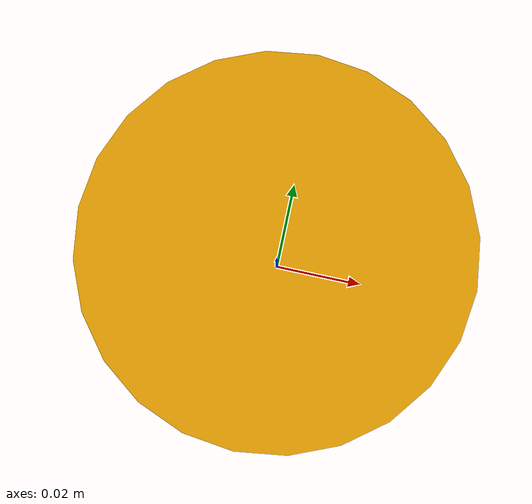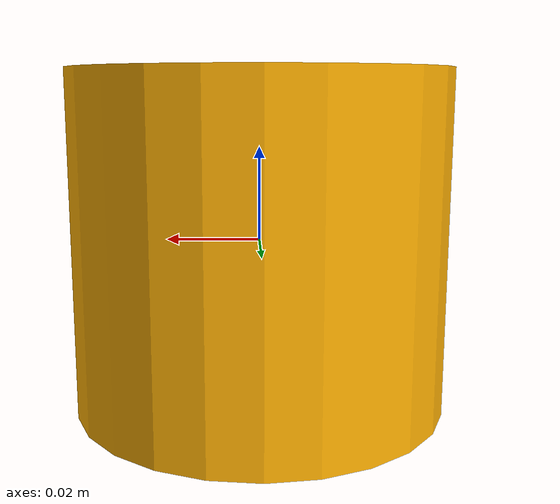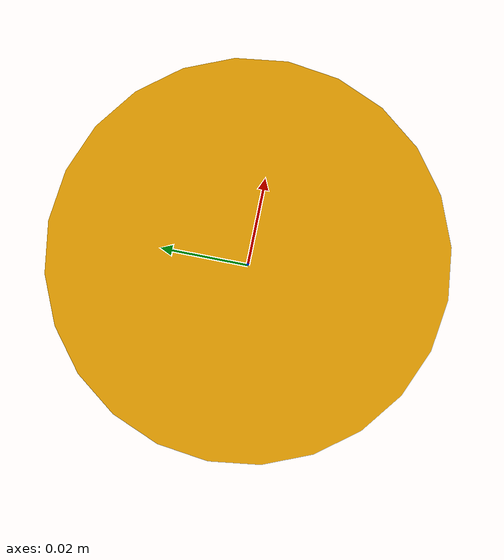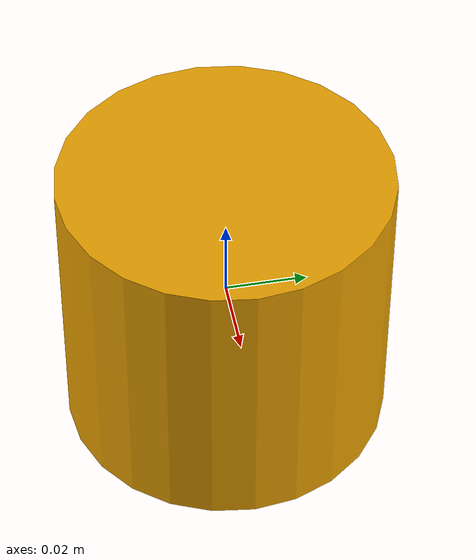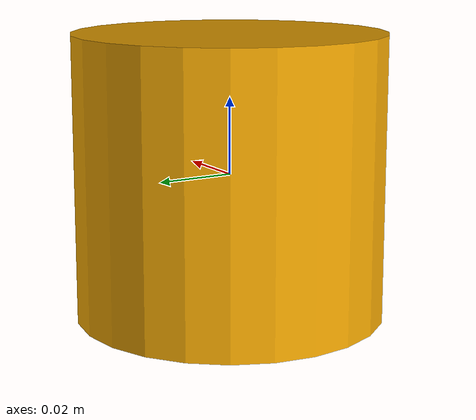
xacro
<?xml version="1.0"?>
<robot xmlns:xacro="http://www.ros.org/wiki/xacro" name="OS1-128">

  <gazebo reference="OS1-128">
    <static>false</static>
  </gazebo>

  <xacro:include filename="$(find hyrecro)/urdf/hyrecro_materials.xacro"/>
  <xacro:include filename="$(find hyrecro)/urdf/sensor/os1_128_MODIF.urdf.xacro"/>
  <xacro:property name="PI"  value="3.1415926535897931"/>

<!--LINKS DECLARATION-->

  <xacro:OS1-128
    parent       = "base_link"
    name         = "os1_sensor"
    topic_points = "/os1/pointCloud"
    topic_imu    = "/os1/imu"
    hz           = "10"
    lasers       = "128"
    samples      = "512"
    min_range    = "0.2"
    max_range    = "10.0"
    noise        = "0.008"
    min_angle    = "-${M_PI}"
    max_angle    = "${M_PI}"
    lidar_link   = "os1_lidar"
    imu_link     = "os1_imu"
    vfov_min     = "-0.3979"
    vfov_max     = "0.3979">
    <origin xyz="0.0 0.0 0.0365" rpy="0.0 0.0 0.0"/>
  </xacro:OS1-128>

</robot>

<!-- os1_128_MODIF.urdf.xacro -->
<robot xmlns:xacro="http://www.ros.org/wiki/xacro" name="OS1-128">
  <xacro:property name="M_PI" value="3.1415926535897931" />
  <xacro:macro name="OS1-128" params="*origin parent:=base_link name:=os1_sensor topic_points:=/os1_cloud_node/points topic_imu:=/os1_cloud_node/imu hz:=10 lasers:=128 samples:=512 min_range:=0.8 max_range:=120.0 noise:=0.008 min_angle:=-${M_PI} max_angle:=${M_PI} lidar_link:=os1_lidar imu_link:=os1_imu vfov_min:=-0.3979 vfov_max:=0.3979">

    <link name="${name}">
      <inertial>
         <mass value="0.33"/>
         <origin xyz="0 0 0" rpy="0 0 0" />
         <inertia ixx="0.000241148" ixy="0" ixz="0"
          iyy="0.000241148" iyz="0" izz="0.000264"/>
      </inertial>
      <collision name="base_collision">
         <origin xyz="0 0 0" rpy="0 0 0" />
         <geometry>
 	        <cylinder radius="0.04" length="0.073"/>
         </geometry>
      </collision>
      <visual name="base_visual">
         <origin xyz="0 0 0.0" rpy="0 0 1.5707" />
         <geometry>
          <cylinder length="0.073" radius="0.04" />
         </geometry>
      </visual>
    </link>

    <link name="${imu_link}" />

    <link name="${lidar_link}" />

    <joint name="${name}_imu_link_joint" type="fixed">
      <parent link="${name}" />
      <child link="${imu_link}" />
      <origin xyz="0.006253 -0.011775 0.007645" rpy="0 0 0" />
    </joint>
    <gazebo reference="${imu_link}">
    </gazebo>

    <joint name="${name}_lidar_link_joint" type="fixed">
      <parent link="${name}" />
      <child link="${lidar_link}" />
      <origin xyz="0.0 0.0 0.0365" rpy="0 0 0" />
    </joint>

    <!-- Gazebo requires the ouster_gazebo_plugins package -->
    <gazebo reference="${name}">
        <sensor type="gpu_ray" name="${name}-OS1-128">
          <pose>0 0 0 0 0 0</pose>
          <visualize>false</visualize>
          <update_rate>${hz}</update_rate>
          <ray>
            <scan>
              <horizontal>
                <samples>${samples}</samples>
                <resolution>1</resolution>
                <min_angle>${min_angle}</min_angle>
                <max_angle>${max_angle}</max_angle>
              </horizontal>
              <vertical>
                <samples>${lasers}</samples>
                <resolution>1</resolution>
                <min_angle>${vfov_min}</min_angle>
                <max_angle>${vfov_max}</max_angle>
              </vertical>
            </scan>
            <range>
              <min>${min_range}</min>
              <max>${max_range}</max>
              <resolution>0.03</resolution>
            </range>
          </ray>
          <plugin name="gazebo_ros_laser_controller" filename="libgazebo_ros_ouster_gpu_laser.so">
            <topicName>${topic_points}</topicName>
            <frameName>${name}</frameName>
            <min_range>${min_range}</min_range>
            <max_range>${max_range}</max_range>
            <gaussianNoise>${noise}</gaussianNoise>
          </plugin>
        </sensor>
    </gazebo>

    <!-- IMU -->
  <gazebo>
    <plugin name="imu_controller" filename="libhector_gazebo_ros_imu.so">
      <robotNamespace>/</robotNamespace>
      <updateRate>100.0</updateRate>
      <bodyName>${imu_link}</bodyName>
      <topicName>${topic_imu}</topicName>
      <accelDrift>0.005 0.005 0.005</accelDrift>
      <accelGaussianNoise>0.005 0.005 0.005</accelGaussianNoise>
      <rateDrift>0.005 0.005 0.005 </rateDrift>
      <rateGaussianNoise>0.005 0.005 0.005 </rateGaussianNoise>
      <headingDrift>0.005</headingDrift>
      <headingGaussianNoise>0.005</headingGaussianNoise>
    </plugin>
  </gazebo>

  </xacro:macro>
</robot>
